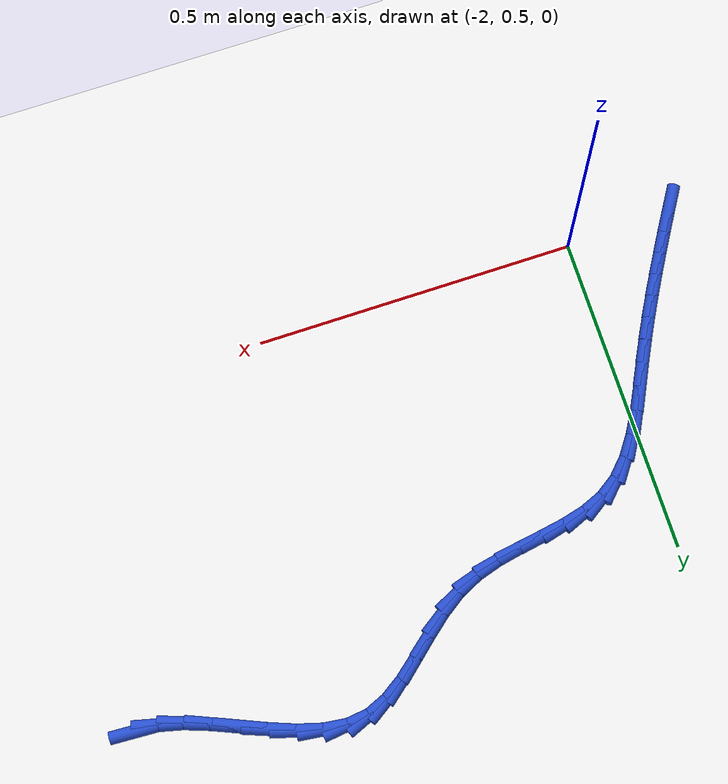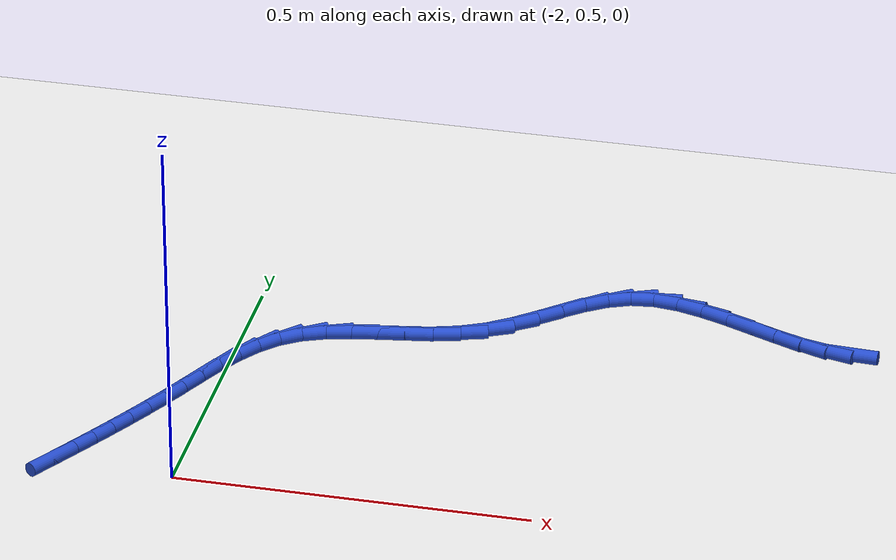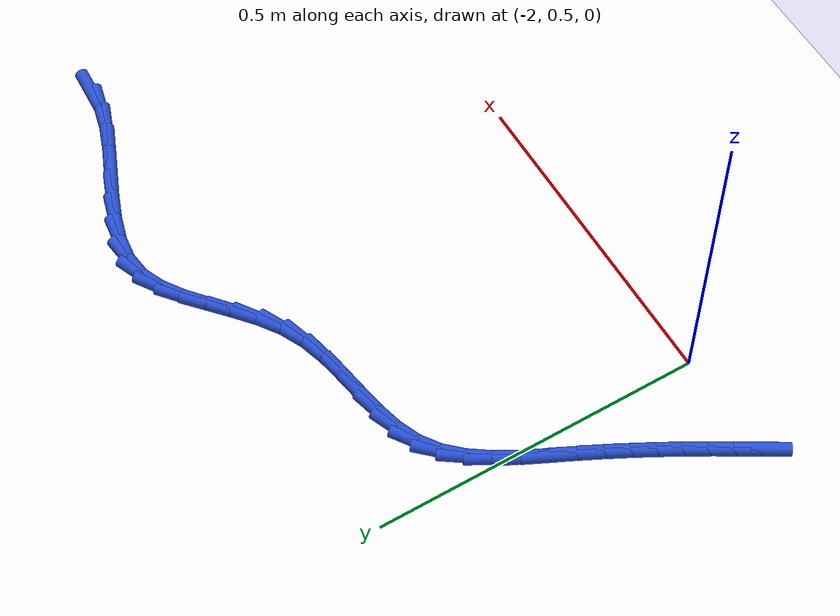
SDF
<sdf version="1.6">
 <world name="default">
  <model name="ground_plane">
   <static>1</static>
   <link name="link">
    <collision name="collision">
     <geometry><plane><normal>0 0 1</normal><size>100 100</size></plane></geometry>
     <surface><friction><ode><mu>100</mu><mu2>50</mu2></ode></friction></surface>
    </collision>
    <visual name="visual">
     <cast_shadows>0</cast_shadows>
     <geometry><plane><normal>0 0 1</normal><size>100 100</size></plane></geometry>
     <material>
      <script><uri>file://media/materials/scripts/gazebo.material</uri><name>Gazebo/WhiteGlow</name></script>
     </material>
    </visual>
   </link>
  </model>
  <model name="line">
   <link name="link_52">
    <pose>-1.151586479385366 1.0083637016312395 0.01 0 1.57 -0.05314590008722876</pose>
    <collision name="collision">
     <geometry><cylinder><radius>0.01</radius><length>0.08</length></cylinder></geometry>
    </collision>
    <visual name="visual">
     <material>
      <script><name>Gazebo/Blue</name><uri>file://media/materials/scripts/gazebo.material</uri></script>
     </material>
     <geometry><cylinder><radius>0.01</radius><length>0.08</length></cylinder></geometry>
    </visual>
   </link>
   <link name="link_53">
    <pose>-1.1851883255914524 1.0101511852172993 0.01 0 1.57 -0.24388330143926176</pose>
    <collision name="collision">
     <geometry><cylinder><radius>0.01</radius><length>0.08</length></cylinder></geometry>
    </collision>
    <visual name="visual">
     <material>
      <script><name>Gazebo/Blue</name><uri>file://media/materials/scripts/gazebo.material</uri></script>
     </material>
     <geometry><cylinder><radius>0.01</radius><length>0.08</length></cylinder></geometry>
    </visual>
   </link>
   <link name="link_54">
    <pose>-1.2211060158773202 1.0190888174252317 0.01 0 1.57 -0.35271052769358696</pose>
    <collision name="collision">
     <geometry><cylinder><radius>0.01</radius><length>0.08</length></cylinder></geometry>
    </collision>
    <visual name="visual">
     <material>
      <script><name>Gazebo/Blue</name><uri>file://media/materials/scripts/gazebo.material</uri></script>
     </material>
     <geometry><cylinder><radius>0.01</radius><length>0.08</length></cylinder></geometry>
    </visual>
   </link>
   <link name="link_55">
    <pose>-1.258687475422302 1.0329226743989293 0.01 0 1.57 -0.4034950915412203</pose>
    <collision name="collision">
     <geometry><cylinder><radius>0.01</radius><length>0.08</length></cylinder></geometry>
    </collision>
    <visual name="visual">
     <material>
      <script><name>Gazebo/Blue</name><uri>file://media/materials/scripts/gazebo.material</uri></script>
     </material>
     <geometry><cylinder><radius>0.01</radius><length>0.08</length></cylinder></geometry>
    </visual>
   </link>
   <link name="link_56">
    <pose>-1.2972806294057295 1.049398832282282 0.01 0 1.57 -0.40858357364994696</pose>
    <collision name="collision">
     <geometry><cylinder><radius>0.01</radius><length>0.08</length></cylinder></geometry>
    </collision>
    <visual name="visual">
     <material>
      <script><name>Gazebo/Blue</name><uri>file://media/materials/scripts/gazebo.material</uri></script>
     </material>
     <geometry><cylinder><radius>0.01</radius><length>0.08</length></cylinder></geometry>
    </visual>
   </link>
   <link name="link_57">
    <pose>-1.3362334030069343 1.0662633672191812 0.01 0 1.57 -0.3700916143112382</pose>
    <collision name="collision">
     <geometry><cylinder><radius>0.01</radius><length>0.08</length></cylinder></geometry>
    </collision>
    <visual name="visual">
     <material>
      <script><name>Gazebo/Blue</name><uri>file://media/materials/scripts/gazebo.material</uri></script>
     </material>
     <geometry><cylinder><radius>0.01</radius><length>0.08</length></cylinder></geometry>
    </visual>
   </link>
   <link name="link_58">
    <pose>-1.3748937214052492 1.081262355353518 0.01 0 1.57 -0.28083682230791335</pose>
    <collision name="collision">
     <geometry><cylinder><radius>0.01</radius><length>0.08</length></cylinder></geometry>
    </collision>
    <visual name="visual">
     <material>
      <script><name>Gazebo/Blue</name><uri>file://media/materials/scripts/gazebo.material</uri></script>
     </material>
     <geometry><cylinder><radius>0.01</radius><length>0.08</length></cylinder></geometry>
    </visual>
   </link>
   <link name="link_59">
    <pose>-1.412609509780005 1.0921418728291827 0.01 0 1.57 -0.12411577986707746</pose>
    <collision name="collision">
     <geometry><cylinder><radius>0.01</radius><length>0.08</length></cylinder></geometry>
    </collision>
    <visual name="visual">
     <material>
      <script><name>Gazebo/Blue</name><uri>file://media/materials/scripts/gazebo.material</uri></script>
     </material>
     <geometry><cylinder><radius>0.01</radius><length>0.08</length></cylinder></geometry>
    </visual>
   </link>
   <link name="link_60">
    <pose>-1.4487286933105357 1.0966479957900679 0.01 0 1.57 0.12006608974457447</pose>
    <collision name="collision">
     <geometry><cylinder><radius>0.01</radius><length>0.08</length></cylinder></geometry>
    </collision>
    <visual name="visual">
     <material>
      <script><name>Gazebo/Blue</name><uri>file://media/materials/scripts/gazebo.material</uri></script>
     </material>
     <geometry><cylinder><radius>0.01</radius><length>0.08</length></cylinder></geometry>
    </visual>
   </link>
   <link name="link_61">
    <pose>-1.4826096412727539 1.0925603817830614 0.01 0 1.57 0.39332218002669034</pose>
    <collision name="collision">
     <geometry><cylinder><radius>0.01</radius><length>0.08</length></cylinder></geometry>
    </collision>
    <visual name="visual">
     <material>
      <script><name>Gazebo/Blue</name><uri>file://media/materials/scripts/gazebo.material</uri></script>
     </material>
     <geometry><cylinder><radius>0.01</radius><length>0.08</length></cylinder></geometry>
    </visual>
   </link>
   <link name="link_62">
    <pose>-1.514172107097579 1.0794637336642297 0.01 0 1.57 0.5842710907141366</pose>
    <collision name="collision">
     <geometry><cylinder><radius>0.01</radius><length>0.08</length></cylinder></geometry>
    </collision>
    <visual name="visual">
     <material>
      <script><name>Gazebo/Blue</name><uri>file://media/materials/scripts/gazebo.material</uri></script>
     </material>
     <geometry><cylinder><radius>0.01</radius><length>0.08</length></cylinder></geometry>
    </visual>
   </link>
   <link name="link_63">
    <pose>-1.5441704050391432 1.05962615759866 0.01 0 1.57 0.688905536754991</pose>
    <collision name="collision">
     <geometry><cylinder><radius>0.01</radius><length>0.08</length></cylinder></geometry>
    </collision>
    <visual name="visual">
     <material>
      <script><name>Gazebo/Blue</name><uri>file://media/materials/scripts/gazebo.material</uri></script>
     </material>
     <geometry><cylinder><radius>0.01</radius><length>0.08</length></cylinder></geometry>
    </visual>
   </link>
   <link name="link_64">
    <pose>-1.5734266357706956 1.0355337166651923 0.01 0 1.57 0.7225250102376076</pose>
    <collision name="collision">
     <geometry><cylinder><radius>0.01</radius><length>0.08</length></cylinder></geometry>
    </collision>
    <visual name="visual">
     <material>
      <script><name>Gazebo/Blue</name><uri>file://media/materials/scripts/gazebo.material</uri></script>
     </material>
     <geometry><cylinder><radius>0.01</radius><length>0.08</length></cylinder></geometry>
    </visual>
   </link>
   <link name="link_65">
    <pose>-1.6027628999654866 1.0096724739426632 0.01 0 1.57 0.6936700599582344</pose>
    <collision name="collision">
     <geometry><cylinder><radius>0.01</radius><length>0.08</length></cylinder></geometry>
    </collision>
    <visual name="visual">
     <material>
      <script><name>Gazebo/Blue</name><uri>file://media/materials/scripts/gazebo.material</uri></script>
     </material>
     <geometry><cylinder><radius>0.01</radius><length>0.08</length></cylinder></geometry>
    </visual>
   </link>
   <link name="link_66">
    <pose>-1.633001298296764 0.9845284925099096 0.01 0 1.57 0.6015720330930103</pose>
    <collision name="collision">
     <geometry><cylinder><radius>0.01</radius><length>0.08</length></cylinder></geometry>
    </collision>
    <visual name="visual">
     <material>
      <script><name>Gazebo/Blue</name><uri>file://media/materials/scripts/gazebo.material</uri></script>
     </material>
     <geometry><cylinder><radius>0.01</radius><length>0.08</length></cylinder></geometry>
    </visual>
   </link>
   <link name="link_67">
    <pose>-1.6649639314377778 0.9625878354457695 0.01 0 1.57 0.4451576111105398</pose>
    <collision name="collision">
     <geometry><cylinder><radius>0.01</radius><length>0.08</length></cylinder></geometry>
    </collision>
    <visual name="visual">
     <material>
      <script><name>Gazebo/Blue</name><uri>file://media/materials/scripts/gazebo.material</uri></script>
     </material>
     <geometry><cylinder><radius>0.01</radius><length>0.08</length></cylinder></geometry>
    </visual>
   </link>
   <link name="link_68">
    <pose>-1.6993989481768788 0.9461590048642473 0.01 0 1.57 0.292933442244889</pose>
    <collision name="collision">
     <geometry><cylinder><radius>0.01</radius><length>0.08</length></cylinder></geometry>
    </collision>
    <visual name="visual">
     <material>
      <script><name>Gazebo/Blue</name><uri>file://media/materials/scripts/gazebo.material</uri></script>
     </material>
     <geometry><cylinder><radius>0.01</radius><length>0.08</length></cylinder></geometry>
    </visual>
   </link>
   <link name="link_69">
    <pose>-1.736037419921889 0.9351084658542477 0.01 0 1.57 0.19777280160517327</pose>
    <collision name="collision">
     <geometry><cylinder><radius>0.01</radius><length>0.08</length></cylinder></geometry>
    </collision>
    <visual name="visual">
     <material>
      <script><name>Gazebo/Blue</name><uri>file://media/materials/scripts/gazebo.material</uri></script>
     </material>
     <geometry><cylinder><radius>0.01</radius><length>0.08</length></cylinder></geometry>
    </visual>
   </link>
   <link name="link_70">
    <pose>-1.7738708422445932 0.9275269370285085 0.01 0 1.57 0.15817640847982117</pose>
    <collision name="collision">
     <geometry><cylinder><radius>0.01</radius><length>0.08</length></cylinder></geometry>
    </collision>
    <visual name="visual">
     <material>
      <script><name>Gazebo/Blue</name><uri>file://media/materials/scripts/gazebo.material</uri></script>
     </material>
     <geometry><cylinder><radius>0.01</radius><length>0.08</length></cylinder></geometry>
    </visual>
   </link>
   <link name="link_71">
    <pose>-1.8118740313111235 0.9214650891853658 0.01 0 1.57 0.17300107115478303</pose>
    <collision name="collision">
     <geometry><cylinder><radius>0.01</radius><length>0.08</length></cylinder></geometry>
    </collision>
    <visual name="visual">
     <material>
      <script><name>Gazebo/Blue</name><uri>file://media/materials/scripts/gazebo.material</uri></script>
     </material>
     <geometry><cylinder><radius>0.01</radius><length>0.08</length></cylinder></geometry>
    </visual>
   </link>
   <link name="link_72">
    <pose>-1.8490218032876098 0.9149735931231555 0.01 0 1.57 0.24641072887746723</pose>
    <collision name="collision">
     <geometry><cylinder><radius>0.01</radius><length>0.08</length></cylinder></geometry>
    </collision>
    <visual name="visual">
     <material>
      <script><name>Gazebo/Blue</name><uri>file://media/materials/scripts/gazebo.material</uri></script>
     </material>
     <geometry><cylinder><radius>0.01</radius><length>0.08</length></cylinder></geometry>
    </visual>
   </link>
   <link name="link_73">
    <pose>-1.8842889743401843 0.9061031196402138 0.01 0 1.57 0.38726024679031906</pose>
    <collision name="collision">
     <geometry><cylinder><radius>0.01</radius><length>0.08</length></cylinder></geometry>
    </collision>
    <visual name="visual">
     <material>
      <script><name>Gazebo/Blue</name><uri>file://media/materials/scripts/gazebo.material</uri></script>
     </material>
     <geometry><cylinder><radius>0.01</radius><length>0.08</length></cylinder></geometry>
    </visual>
   </link>
   <link name="link_74">
    <pose>-1.9166503606349767 0.892904339534877 0.01 0 1.57 0.5973997647751778</pose>
    <collision name="collision">
     <geometry><cylinder><radius>0.01</radius><length>0.08</length></cylinder></geometry>
    </collision>
    <visual name="visual">
     <material>
      <script><name>Gazebo/Blue</name><uri>file://media/materials/scripts/gazebo.material</uri></script>
     </material>
     <geometry><cylinder><radius>0.01</radius><length>0.08</length></cylinder></geometry>
    </visual>
   </link>
   <link name="link_75">
    <pose>-1.9451325611942598 0.8735271488222327 0.01 0 1.57 0.8058964395987157</pose>
    <collision name="collision">
     <geometry><cylinder><radius>0.01</radius><length>0.08</length></cylinder></geometry>
    </collision>
    <visual name="visual">
     <material>
      <script><name>Gazebo/Blue</name><uri>file://media/materials/scripts/gazebo.material</uri></script>
     </material>
     <geometry><cylinder><radius>0.01</radius><length>0.08</length></cylinder></geometry>
    </visual>
   </link>
   <link name="link_76">
    <pose>-1.9697043343676308 0.8479267893486557 0.01 0 1.57 0.9546380392289797</pose>
    <collision name="collision">
     <geometry><cylinder><radius>0.01</radius><length>0.08</length></cylinder></geometry>
    </collision>
    <visual name="visual">
     <material>
      <script><name>Gazebo/Blue</name><uri>file://media/materials/scripts/gazebo.material</uri></script>
     </material>
     <geometry><cylinder><radius>0.01</radius><length>0.08</length></cylinder></geometry>
    </visual>
   </link>
   <link name="link_77">
    <pose>-1.9911561259442456 0.817633003101435 0.01 0 1.57 1.0502654486188647</pose>
    <collision name="collision">
     <geometry><cylinder><radius>0.01</radius><length>0.08</length></cylinder></geometry>
    </collision>
    <visual name="visual">
     <material>
      <script><name>Gazebo/Blue</name><uri>file://media/materials/scripts/gazebo.material</uri></script>
     </material>
     <geometry><cylinder><radius>0.01</radius><length>0.08</length></cylinder></geometry>
    </visual>
   </link>
   <link name="link_78">
    <pose>-2.0103059287241085 0.7842283170690297 0.01 0 1.57 1.1025954992354514</pose>
    <collision name="collision">
     <geometry><cylinder><radius>0.01</radius><length>0.08</length></cylinder></geometry>
    </collision>
    <visual name="visual">
     <material>
      <script><name>Gazebo/Blue</name><uri>file://media/materials/scripts/gazebo.material</uri></script>
     </material>
     <geometry><cylinder><radius>0.01</radius><length>0.08</length></cylinder></geometry>
    </visual>
   </link>
   <link name="link_79">
    <pose>-2.027971735507222 0.7492952582398983 0.01 0 1.57 1.1172900050264694</pose>
    <collision name="collision">
     <geometry><cylinder><radius>0.01</radius><length>0.08</length></cylinder></geometry>
    </collision>
    <visual name="visual">
     <material>
      <script><name>Gazebo/Blue</name><uri>file://media/materials/scripts/gazebo.material</uri></script>
     </material>
     <geometry><cylinder><radius>0.01</radius><length>0.08</length></cylinder></geometry>
    </visual>
   </link>
   <link name="link_80">
    <pose>-2.044971407573529 0.7144160451494361 0.01 0 1.57 1.103482086979304</pose>
    <collision name="collision">
     <geometry><cylinder><radius>0.01</radius><length>0.08</length></cylinder></geometry>
    </collision>
    <visual name="visual">
     <material>
      <script><name>Gazebo/Blue</name><uri>file://media/materials/scripts/gazebo.material</uri></script>
     </material>
     <geometry><cylinder><radius>0.01</radius><length>0.08</length></cylinder></geometry>
    </visual>
   </link>
   <link name="link_81">
    <pose>-2.0619500581528207 0.680767751559331 0.01 0 1.57 1.085960159539751</pose>
    <collision name="collision">
     <geometry><cylinder><radius>0.01</radius><length>0.08</length></cylinder></geometry>
    </collision>
    <visual name="visual">
     <material>
      <script><name>Gazebo/Blue</name><uri>file://media/materials/scripts/gazebo.material</uri></script>
     </material>
     <geometry><cylinder><radius>0.01</radius><length>0.08</length></cylinder></geometry>
    </visual>
   </link>
   <link name="link_82">
    <pose>-2.079040066592757 0.6483249401032668 0.01 0 1.57 1.0698474333182526</pose>
    <collision name="collision">
     <geometry><cylinder><radius>0.01</radius><length>0.08</length></cylinder></geometry>
    </collision>
    <visual name="visual">
     <material>
      <script><name>Gazebo/Blue</name><uri>file://media/materials/scripts/gazebo.material</uri></script>
     </material>
     <geometry><cylinder><radius>0.01</radius><length>0.08</length></cylinder></geometry>
    </visual>
   </link>
   <link name="link_83">
    <pose>-2.096279124164385 0.6168401021421184 0.01 0 1.57 1.055567461384568</pose>
    <collision name="collision">
     <geometry><cylinder><radius>0.01</radius><length>0.08</length></cylinder></geometry>
    </collision>
    <visual name="visual">
     <material>
      <script><name>Gazebo/Blue</name><uri>file://media/materials/scripts/gazebo.material</uri></script>
     </material>
     <geometry><cylinder><radius>0.01</radius><length>0.08</length></cylinder></geometry>
    </visual>
   </link>
   <link name="link_84">
    <pose>-2.11370492213875 0.5860657290367587 0.01 0 1.57 1.0434958803868057</pose>
    <collision name="collision">
     <geometry><cylinder><radius>0.01</radius><length>0.08</length></cylinder></geometry>
    </collision>
    <visual name="visual">
     <material>
      <script><name>Gazebo/Blue</name><uri>file://media/materials/scripts/gazebo.material</uri></script>
     </material>
     <geometry><cylinder><radius>0.01</radius><length>0.08</length></cylinder></geometry>
    </visual>
   </link>
   <link name="link_85">
    <pose>-2.131355151786899 0.5557543121480614 0.01 0 1.57 1.0339325650204343</pose>
    <collision name="collision">
     <geometry><cylinder><radius>0.01</radius><length>0.08</length></cylinder></geometry>
    </collision>
    <visual name="visual">
     <material>
      <script><name>Gazebo/Blue</name><uri>file://media/materials/scripts/gazebo.material</uri></script>
     </material>
     <geometry><cylinder><radius>0.01</radius><length>0.08</length></cylinder></geometry>
    </visual>
   </link>
   <link name="link_86">
    <pose>-2.149267504379878 0.5256583428369007 0.01 0 1.57 1.027080102484984</pose>
    <collision name="collision">
     <geometry><cylinder><radius>0.01</radius><length>0.08</length></cylinder></geometry>
    </collision>
    <visual name="visual">
     <material>
      <script><name>Gazebo/Blue</name><uri>file://media/materials/scripts/gazebo.material</uri></script>
     </material>
     <geometry><cylinder><radius>0.01</radius><length>0.08</length></cylinder></geometry>
    </visual>
   </link>
   <link name="link_87">
    <pose>-2.1674796711887327 0.49553031246414997 0.01 0 1.57 1.0230314765753403</pose>
    <collision name="collision">
     <geometry><cylinder><radius>0.01</radius><length>0.08</length></cylinder></geometry>
    </collision>
    <visual name="visual">
     <material>
      <script><name>Gazebo/Blue</name><uri>file://media/materials/scripts/gazebo.material</uri></script>
     </material>
     <geometry><cylinder><radius>0.01</radius><length>0.08</length></cylinder></geometry>
    </visual>
   </link>
  </model>
 </world>
</sdf>
